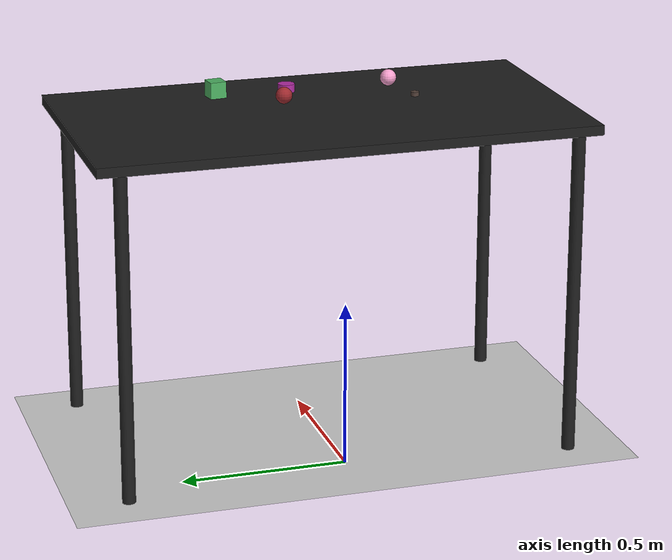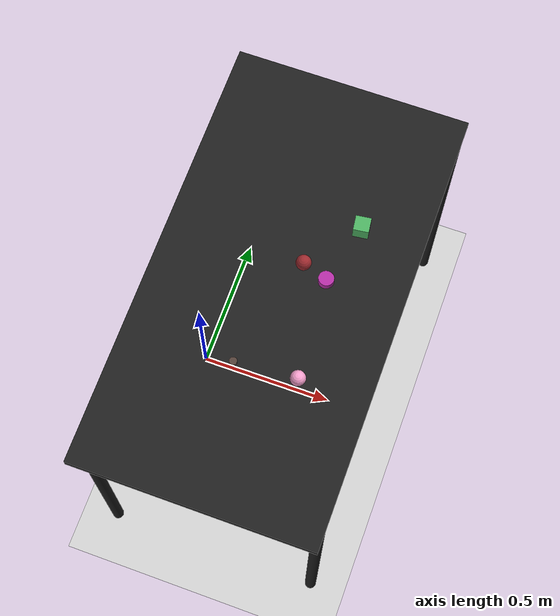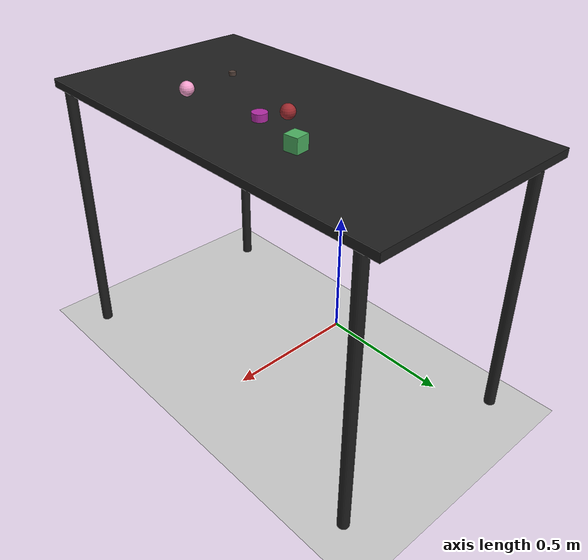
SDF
<?xml version="1.0" ?>
<sdf version="1.6">
  <world name="arm_world">
    <plugin filename="gz-sim-physics-system" name="gz::sim::systems::Physics">
      <engine>
        <filename>libgz-physics-bullet-featherstone-plugin.so</filename>
      </engine>
    </plugin>
    <plugin filename="gz-sim-user-commands-system" name="gz::sim::systems::UserCommands"/>
    <plugin filename="gz-sim-scene-broadcaster-system" name="gz::sim::systems::SceneBroadcaster"/>
    <plugin filename="gz-sim-sensors-system" name="gz::sim::systems::Sensors">
      <render_engine>ogre2</render_engine>
    </plugin>
    <gravity>0.0 0.0 -9.8</gravity>
    <scene>
      <shadows>false</shadows>
    </scene>
    <gui>
      <camera name="user_camera">
        <pose>0.75 -0.75 1.4 0 0.29 2.21</pose>
      </camera>
    </gui>
    <include>
      <uri>https://fuel.gazebosim.org/1.0/OpenRobotics/models/Sun</uri>
    </include>
    <model name="table">
      <static>true</static>
      <include>
        <uri>model://table</uri>
      </include>
      <pose>0.29 0 0 0 0 1.5708</pose>
    </model>
    <model name="ground_plane">
      <static>true</static>
      <link name="link">
        <collision name="collision">
          <geometry>
            <plane>
              <normal>0 0 1</normal>
            </plane>
          </geometry>
          <surface>
            <friction>
              <ode>
                <mu>1.0</mu>
                <mu2>1.0</mu2>
              </ode>
            </friction>
          </surface>
        </collision>
        <visual name="visual">
          <geometry>
            <plane>
              <normal>0 0 1</normal>
              <size>100 100</size>
            </plane>
          </geometry>
          <material>
            <ambient>0.8 0.8 0.8 1</ambient>
            <diffuse>0.8 0.8 0.8 1</diffuse>
            <specular>0.8 0.8 0.8 1</specular>
          </material>
        </visual>
      </link>
    </model>
    <model name="cylinder_m_0">
      <pose>0.436 0.053 1.05 0 0 5.92</pose>
      <link name="cylinder_m_0_link">
        <collision name="cylinder_m_0_collision">
          <geometry>
            <cylinder>
              <radius>0.025</radius>
              <length>0.025</length>
            </cylinder>
          </geometry>
        </collision>
        <visual name="cylinder_m_0_visual">
          <geometry>
            <cylinder>
              <radius>0.025</radius>
              <length>0.025</length>
            </cylinder>
          </geometry>
          <material>
            <ambient>0.7 0.17 0.64 1</ambient>
            <diffuse>0.7 0.17 0.64 1</diffuse>
          </material>
        </visual>
        <velocity_decay>
          <linear>1</linear>
          <angular>1</angular>
        </velocity_decay>
      </link>
    </model>
    <model name="sphere_m_1">
      <pose>0.461 -0.278 1.05 0 0 4.38</pose>
      <link name="sphere_m_1_link">
        <collision name="sphere_m_1_collision">
          <geometry>
            <sphere>
              <radius>0.025</radius>
            </sphere>
          </geometry>
        </collision>
        <visual name="sphere_m_1_visual">
          <geometry>
            <sphere>
              <radius>0.025</radius>
            </sphere>
          </geometry>
          <material>
            <ambient>0.96 0.62 0.8 1</ambient>
            <diffuse>0.96 0.62 0.8 1</diffuse>
          </material>
        </visual>
        <velocity_decay>
          <linear>1</linear>
          <angular>1</angular>
        </velocity_decay>
      </link>
    </model>
    <model name="cylinder_s_2">
      <pose>0.259 -0.295 1.05 0 0 4.25</pose>
      <link name="cylinder_s_2_link">
        <collision name="cylinder_s_2_collision">
          <geometry>
            <cylinder>
              <radius>0.0125</radius>
              <length>0.0125</length>
            </cylinder>
          </geometry>
        </collision>
        <visual name="cylinder_s_2_visual">
          <geometry>
            <cylinder>
              <radius>0.0125</radius>
              <length>0.0125</length>
            </cylinder>
          </geometry>
          <material>
            <ambient>0.32 0.25 0.22 1</ambient>
            <diffuse>0.32 0.25 0.22 1</diffuse>
          </material>
        </visual>
        <velocity_decay>
          <linear>1</linear>
          <angular>1</angular>
        </velocity_decay>
      </link>
    </model>
    <model name="sphere_m_3">
      <pose>0.351 0.084 1.05 0 0 5.48</pose>
      <link name="sphere_m_3_link">
        <collision name="sphere_m_3_collision">
          <geometry>
            <sphere>
              <radius>0.025</radius>
            </sphere>
          </geometry>
        </collision>
        <visual name="sphere_m_3_visual">
          <geometry>
            <sphere>
              <radius>0.025</radius>
            </sphere>
          </geometry>
          <material>
            <ambient>0.61 0.16 0.18 1</ambient>
            <diffuse>0.61 0.16 0.18 1</diffuse>
          </material>
        </visual>
        <velocity_decay>
          <linear>1</linear>
          <angular>1</angular>
        </velocity_decay>
      </link>
    </model>
    <model name="cube_m_4">
      <pose>0.483 0.26 1.05 0 0 3.27</pose>
      <link name="cube_m_4_link">
        <collision name="cube_m_4_collision">
          <geometry>
            <box>
              <size>0.05 0.05 0.05</size>
            </box>
          </geometry>
        </collision>
        <visual name="cube_m_4_visual">
          <geometry>
            <box>
              <size>0.05 0.05 0.05</size>
            </box>
          </geometry>
          <material>
            <ambient>0.3 0.69 0.38 1</ambient>
            <diffuse>0.3 0.69 0.38 1</diffuse>
          </material>
        </visual>
        <velocity_decay>
          <linear>1</linear>
          <angular>1</angular>
        </velocity_decay>
      </link>
    </model>
  </world>
</sdf>

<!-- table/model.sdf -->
<sdf version="1.5">
  <model name="table">
    <static>true</static>
    <link name="link">
      <collision name="surface">
        <pose>0 0 1.0 0 0 0</pose>
        <geometry>
          <box>
            <size>1.5 0.8 0.03</size>
          </box>
        </geometry>
        <surface>
          <friction>
            <ode>
              <mu>0.6</mu>
              <mu2>0.6</mu2>
            </ode>
          </friction>
        </surface>
      </collision>
      <visual name="surface">
        <pose>0 0 1.0 0 0 0</pose>
        <geometry>
          <box>
            <size>1.5 0.8 0.03</size>
          </box>
        </geometry>
        <material>
          <script>
            <uri>file://media/materials/scripts/gazebo.material</uri>
            <name>Gazebo/Black</name>
          </script>
        </material>
      </visual>
      <collision name="front_left_leg">
        <pose>0.68 0.38 0.5 0 0 0</pose>
        <geometry>
          <cylinder>
            <radius>0.02</radius>
            <length>1.0</length>
          </cylinder>
        </geometry>
      </collision>
      <visual name="front_left_leg">
        <pose>0.68 0.38 0.5 0 0 0</pose>
        <geometry>
          <cylinder>
            <radius>0.02</radius>
            <length>1.0</length>
          </cylinder>
        </geometry>
        <material>
          <script>
            <uri>file://media/materials/scripts/gazebo.material</uri>
            <name>Gazebo/Black</name>
          </script>
        </material>
      </visual>
      <collision name="front_right_leg">
        <pose>0.68 -0.38 0.5 0 0 0</pose>
        <geometry>
          <cylinder>
            <radius>0.02</radius>
            <length>1.0</length>
          </cylinder>
        </geometry>
      </collision>
      <visual name="front_right_leg">
        <pose>0.68 -0.38 0.5 0 0 0</pose>
        <geometry>
          <cylinder>
            <radius>0.02</radius>
            <length>1.0</length>
          </cylinder>
        </geometry>
        <material>
          <script>
            <uri>file://media/materials/scripts/gazebo.material</uri>
            <name>Gazebo/Black</name>
          </script>
        </material>
      </visual>
      <collision name="back_right_leg">
        <pose>-0.68 -0.38 0.5 0 0 0</pose>
        <geometry>
          <cylinder>
            <radius>0.02</radius>
            <length>1.0</length>
          </cylinder>
        </geometry>
      </collision>
      <visual name="back_right_leg">
        <pose>-0.68 -0.38 0.5 0 0 0</pose>
        <geometry>
          <cylinder>
            <radius>0.02</radius>
            <length>1.0</length>
          </cylinder>
        </geometry>
        <material>
          <script>
            <uri>file://media/materials/scripts/gazebo.material</uri>
            <name>Gazebo/Black</name>
          </script>
        </material>
      </visual>
      <collision name="back_left_leg">
        <pose>-0.68 0.38 0.5 0 0 0</pose>
        <geometry>
          <cylinder>
            <radius>0.02</radius>
            <length>1.0</length>
          </cylinder>
        </geometry>
      </collision>
      <visual name="back_left_leg">
        <pose>-0.68 0.38 0.5 0 0 0</pose>
        <geometry>
          <cylinder>
            <radius>0.02</radius>
            <length>1.0</length>
          </cylinder>
        </geometry>
        <material>
          <script>
            <uri>file://media/materials/scripts/gazebo.material</uri>
            <name>Gazebo/Black</name>
          </script>
        </material>
      </visual>
    </link>
  </model>
</sdf>
